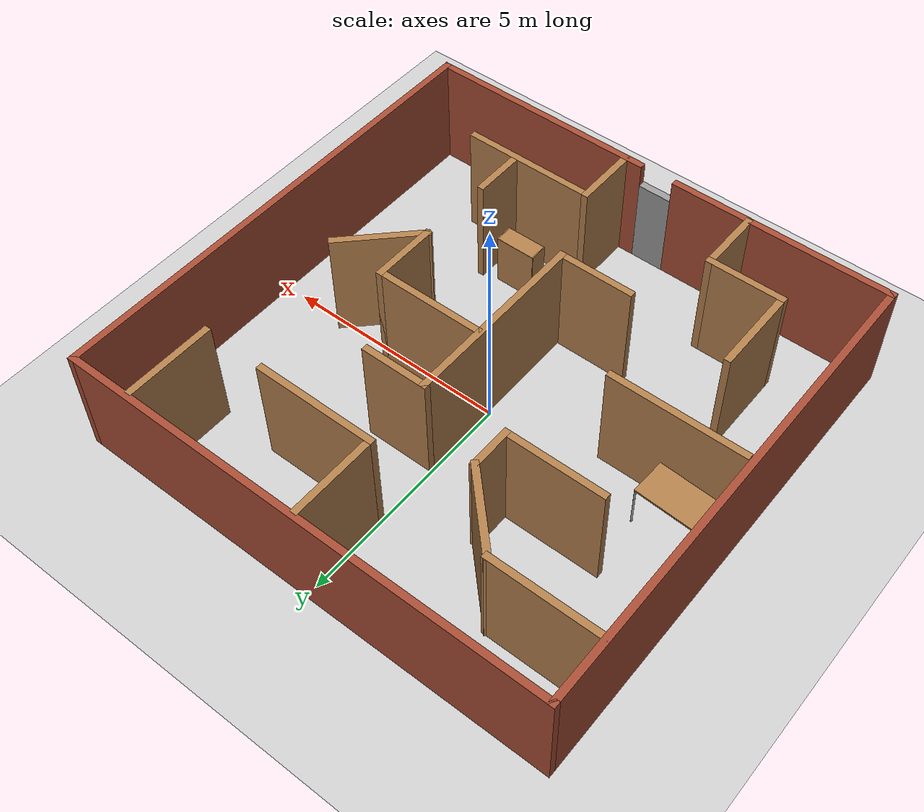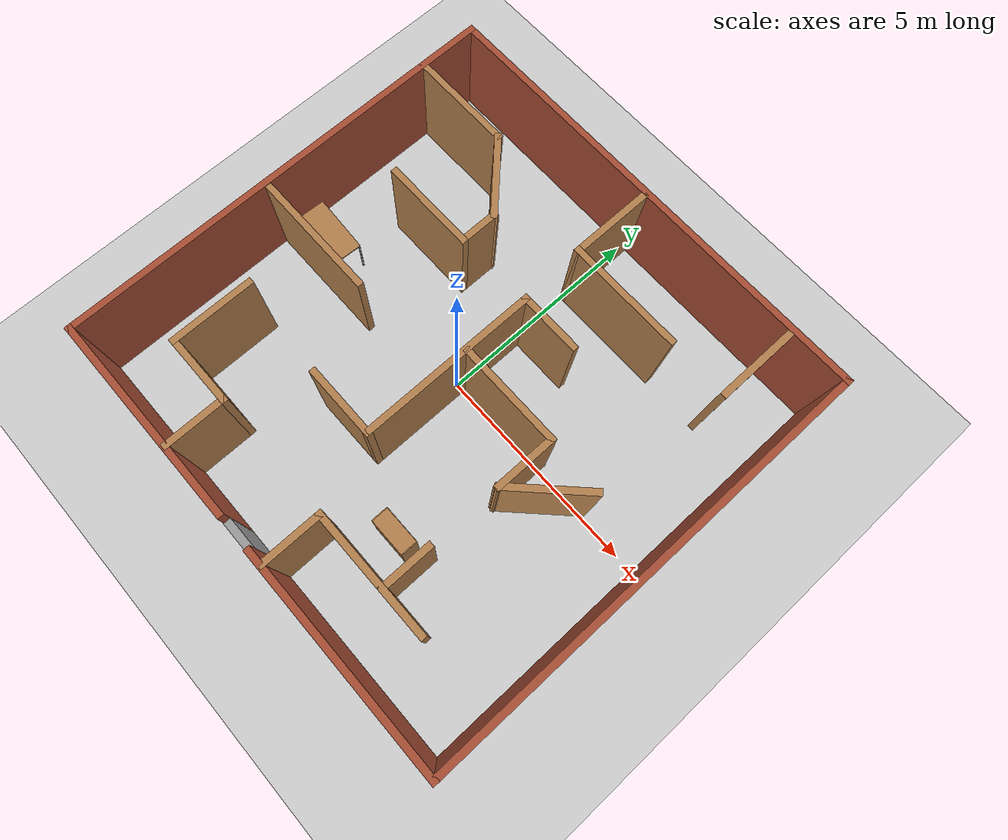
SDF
<sdf version="1.7">
 <world name="default">
  <light name="sun" type="directional">
   <pose>0 0 10 0 -0 0</pose>
   <diffuse>0.8 0.8 0.8 1</diffuse>
   <specular>0.1 0.1 0.1 1</specular>
   <attenuation>
    <range>1000</range>
    <constant>0.9</constant>
    <linear>0.01</linear>
    <quadratic>0.001</quadratic>
   </attenuation>
   <direction>-0.5 0.5 -1</direction>
   <spot><inner_angle>0</inner_angle><outer_angle>0</outer_angle><falloff>0</falloff></spot>
  </light>
  <model name="ground_plane">
   <static>1</static>
   <link name="link">
    <collision name="collision">
     <geometry><plane><normal>0 0 1</normal><size>100 100</size></plane></geometry>
     <surface><friction><ode><mu>100</mu><mu2>50</mu2></ode></friction></surface>
    </collision>
    <visual name="visual">
     <cast_shadows>0</cast_shadows>
     <geometry><plane><normal>0 0 1</normal><size>100 100</size></plane></geometry>
     <material>
      <script><uri>file://media/materials/scripts/gazebo.material</uri><name>Gazebo/Grey</name></script>
     </material>
    </visual>
   </link>
  </model>
  <gravity>0 0 -9.8</gravity>
  <magnetic_field>6e-06 2.3e-05 -4.2e-05</magnetic_field>
  <atmosphere type="adiabatic"/>
  <physics name="default_physics" default="0" type="ode">
   <max_step_size>0.001</max_step_size>
   <real_time_factor>1</real_time_factor>
   <real_time_update_rate>1000</real_time_update_rate>
  </physics>
  <scene><ambient>0.4 0.4 0.4 1</ambient><background>0.7 0.7 0.7 1</background><shadows>1</shadows></scene>
  <spherical_coordinates>
   <surface_model>EARTH_WGS84</surface_model>
   <latitude_deg>0</latitude_deg>
   <longitude_deg>0</longitude_deg>
   <elevation>0</elevation>
   <heading_deg>0</heading_deg>
  </spherical_coordinates>
  <model name="bookshelf">
   <static>1</static>
   <link name="link">
    <inertial><mass>1</mass></inertial>
    <collision name="back">
     <pose>0 0.005 0.6 0 -0 0</pose>
     <geometry><box><size>0.9 0.01 1.2</size></box></geometry>
    </collision>
    <visual name="visual1">
     <pose>0 0.005 0.6 0 -0 0</pose>
     <geometry><box><size>0.9 0.01 1.2</size></box></geometry>
     <material>
      <script><uri>file://media/materials/scripts/gazebo.material</uri><name>Gazebo/Wood</name></script>
     </material>
    </visual>
    <collision name="left_side">
     <pose>0.45 -0.195 0.6 0 -0 0</pose>
     <geometry><box><size>0.02 0.4 1.2</size></box></geometry>
    </collision>
    <visual name="visual2">
     <pose>0.45 -0.195 0.6 0 -0 0</pose>
     <geometry><box><size>0.02 0.4 1.2</size></box></geometry>
     <material>
      <script><uri>file://media/materials/scripts/gazebo.material</uri><name>Gazebo/Wood</name></script>
     </material>
    </visual>
    <collision name="right_side">
     <pose>-0.45 -0.195 0.6 0 -0 0</pose>
     <geometry><box><size>0.02 0.4 1.2</size></box></geometry>
    </collision>
    <visual name="visual3">
     <pose>-0.45 -0.195 0.6 0 -0 0</pose>
     <geometry><box><size>0.02 0.4 1.2</size></box></geometry>
     <material>
      <script><uri>file://media/materials/scripts/gazebo.material</uri><name>Gazebo/Wood</name></script>
     </material>
    </visual>
    <collision name="bottom">
     <pose>0 -0.195 0.03 0 -0 0</pose>
     <geometry><box><size>0.88 0.4 0.06</size></box></geometry>
    </collision>
    <visual name="visual4">
     <pose>0 -0.195 0.03 0 -0 0</pose>
     <geometry><box><size>0.88 0.4 0.06</size></box></geometry>
     <material>
      <script><uri>file://media/materials/scripts/gazebo.material</uri><name>Gazebo/Wood</name></script>
     </material>
    </visual>
    <collision name="top">
     <pose>0 -0.195 1.19 0 -0 0</pose>
     <geometry><box><size>0.88 0.4 0.02</size></box></geometry>
    </collision>
    <visual name="visual5">
     <pose>0 -0.195 1.19 0 -0 0</pose>
     <geometry><box><size>0.88 0.4 0.02</size></box></geometry>
     <material>
      <script><uri>file://media/materials/scripts/gazebo.material</uri><name>Gazebo/Wood</name></script>
     </material>
    </visual>
    <collision name="low_shelf">
     <pose>0 -0.195 0.43 0 -0 0</pose>
     <geometry><box><size>0.88 0.4 0.02</size></box></geometry>
    </collision>
    <visual name="visual6">
     <pose>0 -0.195 0.43 0 -0 0</pose>
     <geometry><box><size>0.88 0.4 0.02</size></box></geometry>
     <material>
      <script><uri>file://media/materials/scripts/gazebo.material</uri><name>Gazebo/Wood</name></script>
     </material>
    </visual>
    <collision name="high_shelf">
     <pose>0 -0.195 0.8 0 -0 0</pose>
     <geometry><box><size>0.88 0.4 0.02</size></box></geometry>
    </collision>
    <visual name="visual7">
     <pose>0 -0.195 0.8 0 -0 0</pose>
     <geometry><box><size>0.88 0.4 0.02</size></box></geometry>
     <material>
      <script><uri>file://media/materials/scripts/gazebo.material</uri><name>Gazebo/Wood</name></script>
     </material>
    </visual>
   </link>
   <pose>1.69663 -2.96341 0 0 -0 0</pose>
  </model>
  <model name="table">
   <static>0</static>
   <link name="link">
    <collision name="surface">
     <pose>0 0 1 0 -0 0</pose>
     <geometry><box><size>1.5 0.8 0.03</size></box></geometry>
     <surface><friction><ode><mu>0.6</mu><mu2>0.6</mu2></ode></friction></surface>
    </collision>
    <visual name="visual1">
     <pose>0 0 1 0 -0 0</pose>
     <geometry><box><size>1.4 0.8 0.04</size></box></geometry>
     <material>
      <script><uri>file://media/materials/scripts/gazebo.material</uri><name>Gazebo/Wood</name></script>
     </material>
    </visual>
    <collision name="front_left_leg">
     <pose>0.68 0.38 0.5 0 -0 0</pose>
     <geometry><cylinder><radius>0.02</radius><length>1</length></cylinder></geometry>
    </collision>
    <visual name="front_left_leg">
     <pose>0.68 0.38 0.5 0 -0 0</pose>
     <geometry><cylinder><radius>0.02</radius><length>1</length></cylinder></geometry>
     <material>
      <script><uri>file://media/materials/scripts/gazebo.material</uri><name>Gazebo/Grey</name></script>
     </material>
    </visual>
    <collision name="front_right_leg">
     <pose>0.68 -0.38 0.5 0 -0 0</pose>
     <geometry><cylinder><radius>0.02</radius><length>1</length></cylinder></geometry>
    </collision>
    <visual name="front_right_leg">
     <pose>0.68 -0.38 0.5 0 -0 0</pose>
     <geometry><cylinder><radius>0.02</radius><length>1</length></cylinder></geometry>
     <material>
      <script><uri>file://media/materials/scripts/gazebo.material</uri><name>Gazebo/Grey</name></script>
     </material>
    </visual>
    <collision name="back_right_leg">
     <pose>-0.68 -0.38 0.5 0 -0 0</pose>
     <geometry><cylinder><radius>0.02</radius><length>1</length></cylinder></geometry>
    </collision>
    <visual name="back_right_leg">
     <pose>-0.68 -0.38 0.5 0 -0 0</pose>
     <geometry><cylinder><radius>0.02</radius><length>1</length></cylinder></geometry>
     <material>
      <script><uri>file://media/materials/scripts/gazebo.material</uri><name>Gazebo/Grey</name></script>
     </material>
    </visual>
    <collision name="back_left_leg">
     <pose>-0.68 0.38 0.5 0 -0 0</pose>
     <geometry><cylinder><radius>0.02</radius><length>1</length></cylinder></geometry>
    </collision>
    <visual name="back_left_leg">
     <pose>-0.68 0.38 0.5 0 -0 0</pose>
     <geometry><cylinder><radius>0.02</radius><length>1</length></cylinder></geometry>
     <material>
      <script><uri>file://media/materials/scripts/gazebo.material</uri><name>Gazebo/Grey</name></script>
     </material>
    </visual>
    <inertial>
     <inertia><ixx>1</ixx><ixy>0</ixy><ixz>0</ixz><iyy>1</iyy><iyz>0</iyz><izz>1</izz></inertia>
     <mass>1</mass>
    </inertial>
   </link>
   <pose>-4.31056 -0.019208 -7e-06 -1e-06 -0 -0.050705</pose>
  </model>
  <model name="maze-median">
   <pose>0.071864 -0.109989 0 0 -0 0</pose>
   <link name="Door_0">
    <collision name="Door_0_Collision">
     <geometry><box><size>0.9 0.17 2</size></box></geometry>
     <pose>0 0 1 0 -0 0</pose>
    </collision>
    <visual name="Door_0_Visual">
     <pose>0 0 1 0 -0 0</pose>
     <geometry><box><size>0.9 0.17 2</size></box></geometry>
     <material>
      <script><uri>file://media/materials/scripts/gazebo.material</uri><name>Gazebo/Grey</name></script>
     </material>
    </visual>
    <pose>-0.122697 -5.31119 0 0 -0 0</pose>
   </link>
   <link name="Wall_0">
    <collision name="Wall_0_Collision">
     <geometry><box><size>5.25 0.15 2.5</size></box></geometry>
     <pose>0 0 1.25 0 -0 0</pose>
    </collision>
    <visual name="Wall_0_Visual">
     <pose>0 0 1.25 0 -0 0</pose>
     <geometry><box><size>5.25 0.15 2.5</size></box></geometry>
     <material>
      <script><uri>file://media/materials/scripts/gazebo.material</uri><name>Gazebo/Bricks</name></script>
      <ambient>1 1 1 1</ambient>
     </material>
     <meta><layer>0</layer></meta>
    </visual>
    <pose>2.875 -5.3 0 0 -0 0</pose>
   </link>
   <link name="Wall_11">
    <collision name="Wall_11_Collision">
     <geometry><box><size>1.5 0.15 2.5</size></box></geometry>
     <pose>0 0 1.25 0 -0 0</pose>
    </collision>
    <visual name="Wall_11_Visual">
     <pose>0 0 1.25 0 -0 0</pose>
     <geometry><box><size>1.5 0.15 2.5</size></box></geometry>
     <material>
      <script><uri>file://media/materials/scripts/gazebo.material</uri><name>Gazebo/Wood</name></script>
      <ambient>1 1 1 1</ambient>
     </material>
     <meta><layer>0</layer></meta>
    </visual>
    <pose>-2.26606 -4.5918 0 0 -0 1.5708</pose>
   </link>
   <link name="Wall_12">
    <collision name="Wall_12_Collision">
     <geometry><box><size>1.75 0.15 2.5</size></box></geometry>
     <pose>0 0 1.25 0 -0 0</pose>
    </collision>
    <visual name="Wall_12_Visual">
     <pose>0 0 1.25 0 -0 0</pose>
     <geometry><box><size>1.75 0.15 2.5</size></box></geometry>
     <material>
      <script><uri>file://media/materials/scripts/gazebo.material</uri><name>Gazebo/Wood</name></script>
      <ambient>1 1 1 1</ambient>
     </material>
     <meta><layer>0</layer></meta>
    </visual>
    <pose>-3.06606 -3.91681 0 0 -0 3.14159</pose>
   </link>
   <link name="Wall_15">
    <collision name="Wall_15_Collision">
     <geometry><box><size>2 0.15 2.5</size></box></geometry>
     <pose>0 0 1.25 0 -0 0</pose>
    </collision>
    <visual name="Wall_15_Visual">
     <pose>0 0 1.25 0 -0 0</pose>
     <geometry><box><size>2 0.15 2.5</size></box></geometry>
     <material>
      <script><uri>file://media/materials/scripts/gazebo.material</uri><name>Gazebo/Wood</name></script>
      <ambient>1 1 1 1</ambient>
     </material>
     <meta><layer>0</layer></meta>
    </visual>
    <pose>-3.86606 -2.99181 0 0 -0 1.5708</pose>
   </link>
   <link name="Wall_17">
    <collision name="Wall_17_Collision">
     <geometry><box><size>3 0.15 2.5</size></box></geometry>
     <pose>0 0 1.25 0 -0 0</pose>
    </collision>
    <visual name="Wall_17_Visual">
     <pose>0 0 1.25 0 -0 0</pose>
     <geometry><box><size>3 0.15 2.5</size></box></geometry>
     <material>
      <script><uri>file://media/materials/scripts/gazebo.material</uri><name>Gazebo/Wood</name></script>
      <ambient>1 1 1 1</ambient>
     </material>
     <meta><layer>0</layer></meta>
    </visual>
    <pose>-3.83891 -0.43355 0 0 -0 0</pose>
   </link>
   <link name="Wall_19">
    <collision name="Wall_19_Collision">
     <geometry><box><size>2.5 0.15 2.5</size></box></geometry>
     <pose>0 0 1.25 0 -0 0</pose>
    </collision>
    <visual name="Wall_19_Visual">
     <pose>0 0 1.25 0 -0 0</pose>
     <geometry><box><size>2.5 0.15 2.5</size></box></geometry>
     <material>
      <script><uri>file://media/materials/scripts/gazebo.material</uri><name>Gazebo/Wood</name></script>
      <ambient>1 1 1 1</ambient>
     </material>
     <meta><layer>0</layer></meta>
    </visual>
    <pose>-4.21127 3.91026 0 0 -0 0</pose>
   </link>
   <link name="Wall_2">
    <collision name="Wall_2_Collision">
     <geometry><box><size>10.75 0.15 2.5</size></box></geometry>
     <pose>0 0 1.25 0 -0 0</pose>
    </collision>
    <visual name="Wall_2_Visual">
     <pose>0 0 1.25 0 -0 0</pose>
     <geometry><box><size>10.75 0.15 2.5</size></box></geometry>
     <material>
      <script><uri>file://media/materials/scripts/gazebo.material</uri><name>Gazebo/Bricks</name></script>
      <ambient>1 1 1 1</ambient>
     </material>
     <meta><layer>0</layer></meta>
    </visual>
    <pose>5.425 -0 0 0 -0 1.5708</pose>
   </link>
   <link name="Wall_20">
    <collision name="Wall_20_Collision">
     <geometry><box><size>2 0.15 2.5</size></box></geometry>
     <pose>0 0 1.25 0 -0 0</pose>
    </collision>
    <visual name="Wall_20_Visual">
     <pose>0 0 1.25 0 -0 0</pose>
     <geometry><box><size>2 0.15 2.5</size></box></geometry>
     <material>
      <script><uri>file://media/materials/scripts/gazebo.material</uri><name>Gazebo/Wood</name></script>
      <ambient>1 1 1 1</ambient>
     </material>
     <meta><layer>0</layer></meta>
    </visual>
    <pose>-2.38219 3.25619 0 0 -0 -0.785398</pose>
   </link>
   <link name="Wall_22">
    <collision name="Wall_22_Collision">
     <geometry><box><size>1 0.15 2.5</size></box></geometry>
     <pose>0 0 1.25 0 -0 0</pose>
    </collision>
    <visual name="Wall_22_Visual">
     <pose>0 0 1.25 0 -0 0</pose>
     <geometry><box><size>1 0.15 2.5</size></box></geometry>
     <material>
      <script><uri>file://media/materials/scripts/gazebo.material</uri><name>Gazebo/Wood</name></script>
      <ambient>1 1 1 1</ambient>
     </material>
     <meta><layer>0</layer></meta>
    </visual>
    <pose>-1.72812 2.17712 0 0 -0 -1.5708</pose>
   </link>
   <link name="Wall_23">
    <collision name="Wall_23_Collision">
     <geometry><box><size>2.25 0.15 2.5</size></box></geometry>
     <pose>0 0 1.25 0 -0 0</pose>
    </collision>
    <visual name="Wall_23_Visual">
     <pose>0 0 1.25 0 -0 0</pose>
     <geometry><box><size>2.25 0.15 2.5</size></box></geometry>
     <material>
      <script><uri>file://media/materials/scripts/gazebo.material</uri><name>Gazebo/Wood</name></script>
      <ambient>1 1 1 1</ambient>
     </material>
     <meta><layer>0</layer></meta>
    </visual>
    <pose>-2.77812 1.75212 0 0 -0 3.14159</pose>
   </link>
   <link name="Wall_25">
    <collision name="Wall_25_Collision">
     <geometry><box><size>2 0.15 2.5</size></box></geometry>
     <pose>0 0 1.25 0 -0 0</pose>
    </collision>
    <visual name="Wall_25_Visual">
     <pose>0 0 1.25 0 -0 0</pose>
     <geometry><box><size>2 0.15 2.5</size></box></geometry>
     <material>
      <script><uri>file://media/materials/scripts/gazebo.material</uri><name>Gazebo/Wood</name></script>
      <ambient>1 1 1 1</ambient>
     </material>
     <meta><layer>0</layer></meta>
    </visual>
    <pose>-0.002385 4.27005 0 0 -0 -1.5708</pose>
   </link>
   <link name="Wall_26">
    <collision name="Wall_26_Collision">
     <geometry><box><size>2.75 0.15 2.5</size></box></geometry>
     <pose>0 0 1.25 0 -0 0</pose>
    </collision>
    <visual name="Wall_26_Visual">
     <pose>0 0 1.25 0 -0 0</pose>
     <geometry><box><size>2.75 0.15 2.5</size></box></geometry>
     <material>
      <script><uri>file://media/materials/scripts/gazebo.material</uri><name>Gazebo/Wood</name></script>
      <ambient>1 1 1 1</ambient>
     </material>
     <meta><layer>0</layer></meta>
    </visual>
    <pose>1.29761 3.34505 0 0 -0 0</pose>
   </link>
   <link name="Wall_28">
    <collision name="Wall_28_Collision">
     <geometry><box><size>2 0.15 2.5</size></box></geometry>
     <pose>0 0 1.25 0 -0 0</pose>
    </collision>
    <visual name="Wall_28_Visual">
     <pose>0 0 1.25 0 -0 0</pose>
     <geometry><box><size>2 0.15 2.5</size></box></geometry>
     <material>
      <script><uri>file://media/materials/scripts/gazebo.material</uri><name>Gazebo/Wood</name></script>
      <ambient>1 1 1 1</ambient>
     </material>
     <meta><layer>0</layer></meta>
    </visual>
    <pose>4.03552 4.27005 0 0 -0 -1.5708</pose>
   </link>
   <link name="Wall_3">
    <collision name="Wall_3_Collision">
     <geometry><box><size>11 0.15 2.5</size></box></geometry>
     <pose>0 0 1.25 0 -0 0</pose>
    </collision>
    <visual name="Wall_3_Visual">
     <pose>0 0 1.25 0 -0 0</pose>
     <geometry><box><size>11 0.15 2.5</size></box></geometry>
     <material>
      <script><uri>file://media/materials/scripts/gazebo.material</uri><name>Gazebo/Bricks</name></script>
      <ambient>1 1 1 1</ambient>
     </material>
     <meta><layer>0</layer></meta>
    </visual>
    <pose>0 5.3 0 0 -0 3.14159</pose>
   </link>
   <link name="Wall_30">
    <collision name="Wall_30_Collision">
     <geometry><box><size>4.25 0.15 2.5</size></box></geometry>
     <pose>0 0 1.25 0 -0 0</pose>
    </collision>
    <visual name="Wall_30_Visual">
     <pose>0 0 1.25 0 -0 0</pose>
     <geometry><box><size>4.25 0.15 2.5</size></box></geometry>
     <material>
      <script><uri>file://media/materials/scripts/gazebo.material</uri><name>Gazebo/Wood</name></script>
      <ambient>1 1 1 1</ambient>
     </material>
     <meta><layer>0</layer></meta>
    </visual>
    <pose>0.058795 -0.219873 0 0 -0 -1.5708</pose>
   </link>
   <link name="Wall_32">
    <collision name="Wall_32_Collision">
     <geometry><box><size>1.5 0.15 2.5</size></box></geometry>
     <pose>0 0 1.25 0 -0 0</pose>
    </collision>
    <visual name="Wall_32_Visual">
     <pose>0 0 1.25 0 -0 0</pose>
     <geometry><box><size>1.5 0.15 2.5</size></box></geometry>
     <material>
      <script><uri>file://media/materials/scripts/gazebo.material</uri><name>Gazebo/Wood</name></script>
      <ambient>1 1 1 1</ambient>
     </material>
     <meta><layer>0</layer></meta>
    </visual>
    <pose>0.733795 1.83013 0 0 -0 0</pose>
   </link>
   <link name="Wall_34">
    <collision name="Wall_34_Collision">
     <geometry><box><size>2.5 0.15 2.5</size></box></geometry>
     <pose>0 0 1.25 0 -0 0</pose>
    </collision>
    <visual name="Wall_34_Visual">
     <pose>0 0 1.25 0 -0 0</pose>
     <geometry><box><size>2.5 0.15 2.5</size></box></geometry>
     <material>
      <script><uri>file://media/materials/scripts/gazebo.material</uri><name>Gazebo/Wood</name></script>
      <ambient>1 1 1 1</ambient>
     </material>
     <meta><layer>0</layer></meta>
    </visual>
    <pose>1.29498 0.239435 0 0 -0 0</pose>
   </link>
   <link name="Wall_36">
    <collision name="Wall_36_Collision">
     <geometry><box><size>1.5 0.15 2.5</size></box></geometry>
     <pose>0 0 1.25 0 -0 0</pose>
    </collision>
    <visual name="Wall_36_Visual">
     <pose>0 0 1.25 0 -0 0</pose>
     <geometry><box><size>1.5 0.15 2.5</size></box></geometry>
     <material>
      <script><uri>file://media/materials/scripts/gazebo.material</uri><name>Gazebo/Wood</name></script>
      <ambient>1 1 1 1</ambient>
     </material>
     <meta><layer>0</layer></meta>
    </visual>
    <pose>2.46998 -0.435565 0 0 -0 -1.5708</pose>
   </link>
   <link name="Wall_37">
    <collision name="Wall_37_Collision">
     <geometry><box><size>2 0.15 2.5</size></box></geometry>
     <pose>0 0 1.25 0 -0 0</pose>
    </collision>
    <visual name="Wall_37_Visual">
     <pose>0 0 1.25 0 -0 0</pose>
     <geometry><box><size>2 0.15 2.5</size></box></geometry>
     <material>
      <script><uri>file://media/materials/scripts/gazebo.material</uri><name>Gazebo/Wood</name></script>
      <ambient>1 1 1 1</ambient>
     </material>
     <meta><layer>0</layer></meta>
    </visual>
    <pose>3.12405 -0.456491 0 0 -0 0.785398</pose>
   </link>
   <link name="Wall_4">
    <collision name="Wall_4_Collision">
     <geometry><box><size>10.75 0.15 2.5</size></box></geometry>
     <pose>0 0 1.25 0 -0 0</pose>
    </collision>
    <visual name="Wall_4_Visual">
     <pose>0 0 1.25 0 -0 0</pose>
     <geometry><box><size>10.75 0.15 2.5</size></box></geometry>
     <material>
      <script><uri>file://media/materials/scripts/gazebo.material</uri><name>Gazebo/Bricks</name></script>
      <ambient>1 1 1 1</ambient>
     </material>
     <meta><layer>0</layer></meta>
    </visual>
    <pose>-5.425 -0 0 0 -0 -1.5708</pose>
   </link>
   <link name="Wall_40">
    <collision name="Wall_40_Collision">
     <geometry><box><size>1.25 0.15 2.5</size></box></geometry>
     <pose>0 0 1.25 0 -0 0</pose>
    </collision>
    <visual name="Wall_40_Visual">
     <pose>0 0 1.25 0 -0 0</pose>
     <geometry><box><size>1.25 0.15 2.5</size></box></geometry>
     <material>
      <script><uri>file://media/materials/scripts/gazebo.material</uri><name>Gazebo/Wood</name></script>
      <ambient>1 1 1 1</ambient>
     </material>
     <meta><layer>0</layer></meta>
    </visual>
    <pose>2.43652 -3.34965 0 0 -0 1.5708</pose>
   </link>
   <link name="Wall_42">
    <collision name="Wall_42_Collision">
     <geometry><box><size>1.75 0.15 2.5</size></box></geometry>
     <pose>0 0 1.25 0 -0 0</pose>
    </collision>
    <visual name="Wall_42_Visual">
     <pose>0 0 1.25 0 -0 0</pose>
     <geometry><box><size>1.75 0.15 2.5</size></box></geometry>
     <material>
      <script><uri>file://media/materials/scripts/gazebo.material</uri><name>Gazebo/Wood</name></script>
      <ambient>1 1 1 1</ambient>
     </material>
     <meta><layer>0</layer></meta>
    </visual>
    <pose>-0.741205 -2.26987 0 0 -0 3.14159</pose>
   </link>
   <link name="Wall_6">
    <collision name="Wall_6_Collision">
     <geometry><box><size>5 0.15 2.5</size></box></geometry>
     <pose>0 0 1.25 0 -0 0</pose>
    </collision>
    <visual name="Wall_6_Visual">
     <pose>0 0 1.25 0 -0 0</pose>
     <geometry><box><size>5 0.15 2.5</size></box></geometry>
     <material>
      <script><uri>file://media/materials/scripts/gazebo.material</uri><name>Gazebo/Bricks</name></script>
      <ambient>1 1 1 1</ambient>
     </material>
     <meta><layer>0</layer></meta>
    </visual>
    <pose>-3 -5.3 0 0 -0 0</pose>
   </link>
   <link name="Wall_8">
    <collision name="Wall_8_Collision">
     <geometry><box><size>1.5 0.15 2.5</size></box></geometry>
     <pose>0 0 1.25 0 -0 0</pose>
    </collision>
    <visual name="Wall_8_Visual">
     <pose>0 0 1.25 0 -0 0</pose>
     <geometry><box><size>1.5 0.15 2.5</size></box></geometry>
     <material>
      <script><uri>file://media/materials/scripts/gazebo.material</uri><name>Gazebo/Wood</name></script>
      <ambient>1 1 1 1</ambient>
     </material>
     <meta><layer>0</layer></meta>
    </visual>
    <pose>0.6706 -4.5918 0 0 -0 1.5708</pose>
   </link>
   <link name="Wall_9">
    <collision name="Wall_9_Collision">
     <geometry><box><size>3 0.15 2.5</size></box></geometry>
     <pose>0 0 1.25 0 -0 0</pose>
    </collision>
    <visual name="Wall_9_Visual">
     <pose>0 0 1.25 0 -0 0</pose>
     <geometry><box><size>3 0.15 2.5</size></box></geometry>
     <material>
      <script><uri>file://media/materials/scripts/gazebo.material</uri><name>Gazebo/Wood</name></script>
      <ambient>1 1 1 1</ambient>
     </material>
     <meta><layer>0</layer></meta>
    </visual>
    <pose>2.0956 -3.91681 0 0 -0 0</pose>
   </link>
   <static>1</static>
  </model>
 </world>
</sdf>
